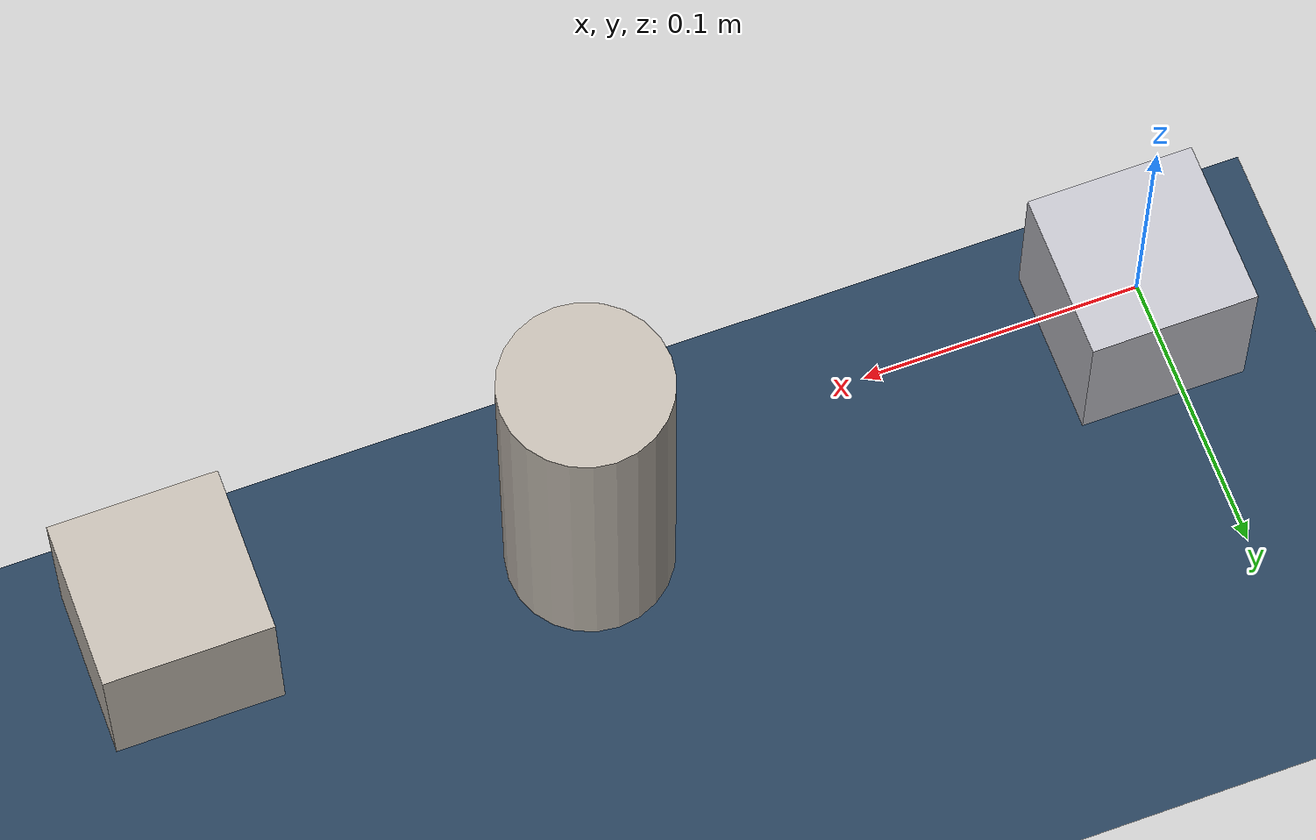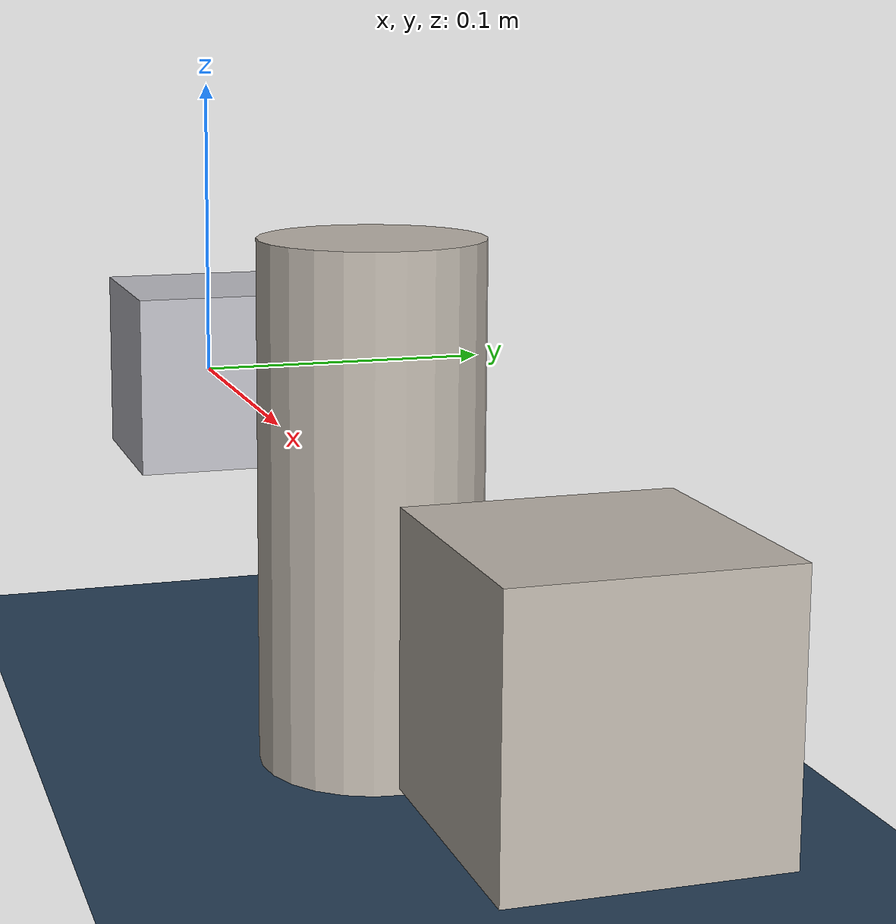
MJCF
<mujoco model="right_shadow_hand scene">

  <statistic extent="0.3" center="0.3 0 0"/>

  <visual>
    <rgba haze="0.15 0.25 0.35 1"/>
    <quality shadowsize="8192"/>
    <global azimuth="220" elevation="-30"/>
    <headlight ambient="0 0 0" diffuse="0.1 0.1 0.1" specular="1 1 1"/> <!-- Mi raccomando copiare questa linea di codice IMPORT -->

  </visual>

  <asset>

    <texture name = "cube" file="Silver.png" type = "cube"/>
    <material name ="cube" texture="cube" specular="1" shininess="1" reflectance="0.5" />

    <texture name = "plastic" file="plastic.png" type = "cube"/>
    <material name ="plastic" texture="plastic" specular="0.8" shininess="0.8" reflectance="0.3" />

    <texture name = "rock" file="rock.png" type = "cube"/>
    <material name ="rock" texture="rock" specular="0.5" shininess="0.5" reflectance="0.3" />

    <texture type="skybox" builtin="gradient" rgb1="0.3 0.5 0.7" rgb2="0 0 0" width="512" height="3072"/>
    <texture type="2d" name="groundplane" builtin="checker" mark="edge" rgb1="0.2 0.3 0.4" rgb2="0.1 0.2 0.3"
      markrgb="0.8 0.8 0.8" width="300" height="300"/>
    <material name="groundplane" texture="groundplane" texuniform="true" texrepeat="5 5" reflectance="0.2"/>
    <mesh file="sphere.obj" scale=".06 .06 .06"/>
  </asset>

  <worldbody>
    <light pos="-.2 -.4 .3" dir="1 2 -1.5" diffuse=".6 .6 .6"/>
    <light pos=".4 -.4 .3" dir="-2 2 -1.5" diffuse=".6 .6 .6"/>
    <light pos="0 0 1"/>
    <light pos="0.3 0 1.5" dir="0 0 -1" directional="true"/>
    <geom name="floor" pos="0 0 -0.1" size="0 0 0.05" type="plane" material="groundplane"/>
    <body name="cube" pos="0 0 0">
      <freejoint/>
      <geom type="box" size=".03 .03 .03" density="4000" material="cube"/>
    </body>

    <body name="cube_plastic" pos="0.2 0 0">
      <freejoint/>
      <geom type="cylinder" size=".03 0.07" density="4000" material="plastic"/>
    </body>

    <body name="cube_rock" pos="0.35 0 0">
      <freejoint/>
      <geom type="box" size=".03 .03 .03" density="9000" material="rock"/>
    </body>

  </worldbody>
</mujoco>
